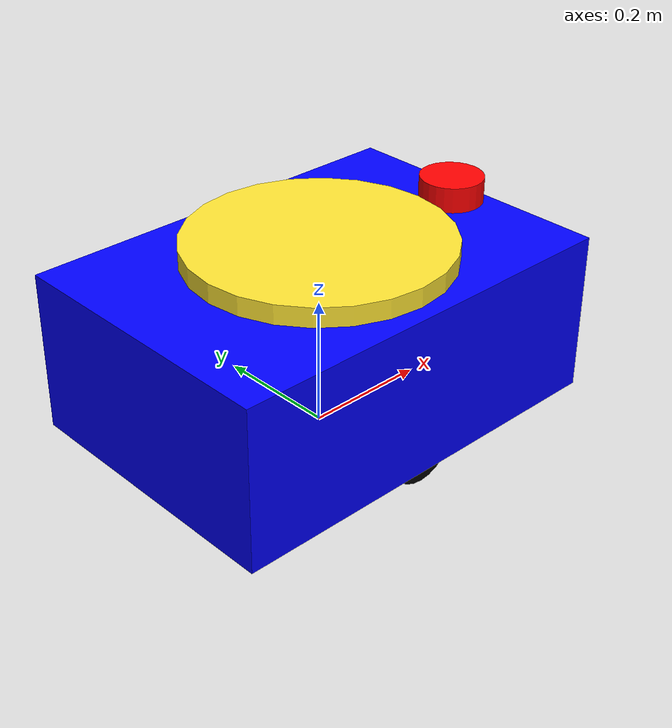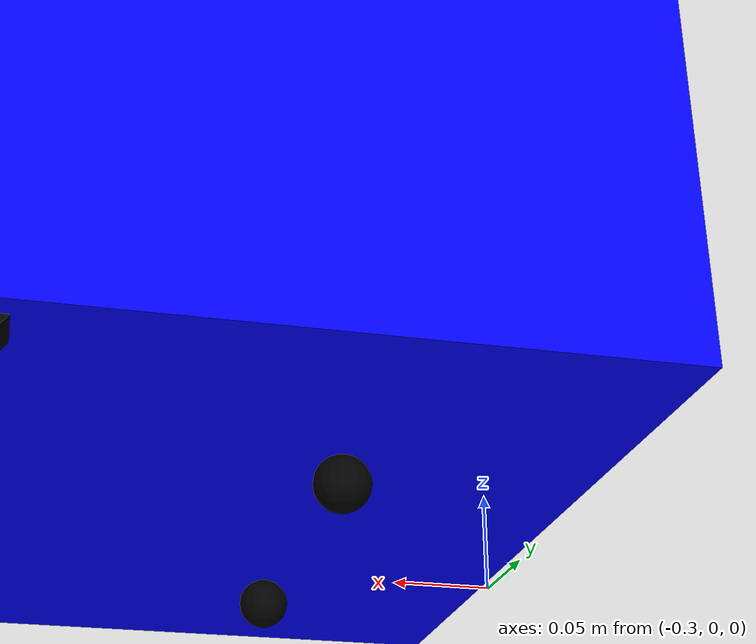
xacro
<?xml version="1.0"?>
<robot name="amr" xmlns:xacro="http://www.ros.org/wiki/xacro">

    <xacro:include filename="robot_common1.xacro" />
    <xacro:include filename="lidar.xacro" />
    <xacro:include filename="lifting.xacro" />
    <xacro:include filename="gazebo.xacro" />

</robot>

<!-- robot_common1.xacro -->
<robot xmlns:xacro="http://www.ros.org/wiki/xacro">

    <xacro:include filename="inertial.xacro" />

    <!-- MATERIAL COLOR-->

    <material name= "blue">
        <color rgba= "0 0 1 1" />
    </material>
    <material name= "green">
        <color rgba= "0 1 0 1" />
    </material>
    <material name= "red">
        <color rgba= "1 0 0 1" />
    </material>
    <material name= "black">
        <color rgba= "0 0 0 1" />
    </material>
    <material name= "white">
        <color rgba= "1 1 1 1" />
    </material>
    <material name= "yellow">
        <color rgba= "1 0.9 0.2 1" />
    </material>

    <!-- common val-->

    <xacro:property name="b_l" value="0.65"/>
    <xacro:property name="b_w" value="0.45"/>
    <xacro:property name="b_h" value="0.25"/>
    <xacro:property name="w_r" value="0.06"/>
    <xacro:property name="w_l" value="0.025"/>
    <xacro:property name="c_r" value="0.0135"/>
    <xacro:property name="c_d" value="0.027"/>

    <!-- BASE LINK -->

    <link name="base_link">

    </link>

    <!-- base_footprint -->

    <link name="base_footprint">
    </link>

    <!-- BASE_FOOTPRINT LINK -->

    <joint name="base_footprint_joint" type="fixed">
        <parent link="base_link"/>
        <child link="base_footprint"/>
        <origin xyz="0 0 0" rpy="0 0 0"/>
    </joint>

    <!-- chassis link -->

    <link name="chassis_link">
        <visual>
            <geometry>
                <box size="${b_l} ${b_w} ${b_h}" />
            </geometry>
            <origin xyz="0 0 ${b_h/2}" rpy="0 0 0" />
            <material name="blue" />
        </visual>
        <collision>
            <geometry>
                <box size="${b_l} ${b_w} ${b_h}"/>
            </geometry>
            <origin xyz="0 0 ${b_h/2}" rpy="0 0 0" />
        </collision>
        <xacro:box_inertia m="5" l="${b_l}" w="${b_w}" h="${b_h}"
            xyz="0 0 ${b_h/2}" rpy="0 0 0" />
    </link>

    <!-- chassis joint -->

    <joint name = "chassis_joint " type = "fixed">
        <parent link ="base_link" />
        <child link ="chassis_link"   />
        <origin xyz="0 0 ${c_d}" rpy="0 0 0" />
    </joint>

    <!-- wheel link -->

    <xacro:macro name="wheel_link" params="pre" >
        <link name="${pre}_wheel_link">
            <visual>
                <geometry>
                    <cylinder radius="${w_r}" length="${w_l}" />
                </geometry>
                <origin xyz="0 0 0" rpy="1.57 0 0" />
                <material name="black" />
            </visual>
            <collision>
                <geometry>
                    <cylinder radius="${w_r}" length="${w_l}" />
                </geometry>
                <origin xyz="0 0 0" rpy="1.57 0 0" />
            </collision>
            <xacro:cylinder_inertia m="0.1" r="${w_r}" h="${w_l}"
                xyz="0 0 0" rpy="1.57 0 0" />
        </link>
    </xacro:macro>

    <xacro:wheel_link pre="l" />
    <xacro:wheel_link pre="r" />

    <!-- wheel joint -->

    <joint name = "r_wheel_joint" type = "continuous">
        <parent link ="base_link" />
        <child link ="r_wheel_link"   />
        <origin xyz="0 ${(b_w/2) - w_l} ${w_r}" rpy="0 0 0" />
        <axis xyz ="0 1 0 "  />
    </joint>

    <joint name = "l_wheel_joint" type = "continuous">
        <parent link ="base_link" />
        <child link ="l_wheel_link"   />
        <origin xyz="0 ${(-b_w/2) + w_l} ${w_r}" rpy="0 0 0" />
        <axis xyz ="0 1 0 "  />
    </joint>

    <!-- caster link -->

    <xacro:macro name="caster" params="pre">
        <link name="caster_wheel_link_${pre}">
            <visual>
                <geometry>
                    <sphere radius="${c_r}" />
                </geometry>
                <origin xyz="0 0 0" rpy="0 0 0" />
                <material name="black" />
            </visual>
            <collision>
                <geometry>
                    <sphere radius="${c_r}" />
                </geometry>
                <origin xyz="0 0 0" rpy="0 0 0" />
            </collision>
            <xacro:caster_inertia m="0.05" r="${c_r}"
                xyz="0 0 0" rpy="0 0 0" />
        </link>
    </xacro:macro>

    <xacro:caster pre="1" />
    <xacro:caster pre="2" />
    <xacro:caster pre="3" />
    <xacro:caster pre="4" />

    <!-- caster joint -->

    <joint name = "caster_wheel_joint_1" type = "fixed">
        <parent link ="chassis_link" />
        <child link ="caster_wheel_link_1"   />
        <origin xyz="0.2 0.1 -0.0135" rpy="0 0 0" />
    </joint>

    <joint name = "caster_wheel_joint_2" type = "fixed">
        <parent link ="chassis_link" />
        <child link ="caster_wheel_link_2"   />
        <origin xyz="-0.2 0.1 -0.0135" rpy="0 0 0" />
    </joint>

    <joint name = "caster_wheel_joint_3" type = "fixed">
        <parent link ="chassis_link" />
        <child link ="caster_wheel_link_3"   />
        <origin xyz="0.2 -0.1 -0.0135" rpy="0 0 0" />
    </joint>

    <joint name = "caster_wheel_joint_4" type = "fixed">
        <parent link ="chassis_link" />
        <child link ="caster_wheel_link_4"   />
        <origin xyz="-0.2 -0.1 -0.0135" rpy="0 0 0" />
    </joint>

</robot>

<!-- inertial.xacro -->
<robot xmlns:xacro="http://www.ros.org/wiki/xacro">

    <xacro:macro name="box_inertia" params="m l w h xyz rpy " >
        <inertial>
            <origin xyz ="${xyz}" rpy="${rpy}" />
            <mass value="${m}" />
            <inertia ixx="${(m/12) * (h*h + l*l)}" ixy="0" ixz="0"
                iyy="${(m/12) * (w*w + l*l)}" iyz="0"
                izz="${(m/12) * (w*w + h*h)}" >
            </inertia>
        </inertial>
    </xacro:macro>

    <xacro:macro name="cylinder_inertia" params="m r h xyz rpy " >
        <inertial>
            <origin xyz ="${xyz}" rpy="${rpy}" />
            <mass value="${m}" />
            <inertia ixx="${(m/12) * (3 * r*r + h*h)}" ixy="0" ixz="0"
                iyy="${(m/12) * (3 * r*r + h*h)}" iyz="0"
                izz="${(m/12) * r*r }" >
            </inertia>
        </inertial>
    </xacro:macro>

    <xacro:macro name="caster_inertia" params="m r xyz rpy " >
        <inertial>
            <origin xyz ="${xyz}" rpy="${rpy}" />
            <mass value="${m}" />
            <inertia ixx="${(2/5) * m*r*r}" ixy="0" ixz="0"
                iyy="${(2/5) * m*r*r}" iyz="0"
                izz="${(2/5) * m*r*r }" >
            </inertia>
        </inertial>
    </xacro:macro>

</robot>

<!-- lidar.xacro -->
<robot xmlns:xacro="http://www.ros.org/wiki/xacro">

    <xacro:include filename="inertial.xacro" />

    <link name="lidar_link">
        <visual>
            <geometry>
                <cylinder radius="0.05" length="0.04" />
            </geometry>
            <origin xyz="0 0 0" rpy="0 0 0" />
            <material name="red" />
        </visual>
        <collision>
            <geometry>
                <cylinder radius="0.05" length="0.04" />
            </geometry>
            <origin xyz="0 0 0" rpy="0 0 0" />
        </collision>
        <xacro:cylinder_inertia m="0.05" r="0.05" h="0.04"
                xyz="0 0 0" rpy="0 0 0" />
    </link>

    <joint name = "lidar_joint" type = "fixed">
        <parent link ="chassis_link" />
        <child link ="lidar_link"   />
        <origin xyz="0.275 0 0.27" rpy="0 0 0" />
    </joint>

    <gazebo reference="lidar_link">
        <material>Gazebo/Red</material>

        <sensor name="laser" type="ray">
            <pose> 0 0 0 0 0 0 </pose>
            <visualize>true</visualize>
            <update_rate>10</update_rate>
            <ray>
                <scan>
                    <horizontal>
                        <samples>360</samples>
                        <min_angle>-3.14</min_angle>
                        <max_angle>3.14</max_angle>
                    </horizontal>
                </scan>
                <range>
                    <min>0.3</min>
                    <max>12</max>
                </range>
            </ray>
            <plugin name="laser_controller" filename="libgazebo_ros_ray_sensor.so">
                <ros>
                    <argument>~/out:=scan</argument>
                </ros>
                <output_type>sensor_msgs/LaserScan</output_type>
                <frame_name>lidar_link</frame_name>
            </plugin>
        </sensor>
    </gazebo>

</robot>

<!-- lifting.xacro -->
<robot xmlns:xacro="http://www.ros.org/wiki/xacro">

    <xacro:include filename="inertial.xacro" />

    <link name="lifting_mech_link">
        <visual>
            <geometry>
                <cylinder radius="0.2" length="0.2" />
            </geometry>
            <origin xyz="0 0 0" rpy="0 0 0" />
            <material name="yellow" />
        </visual>
        <collision>
            <geometry>
                <cylinder radius="0.2" length="0.2" />
            </geometry>
            <origin xyz="0 0 0" rpy="0 0 0" />
        </collision>
        <xacro:cylinder_inertia m="1" r="0.2" h="0.2"
                xyz="0 0 0" rpy="0 0 0" />
    </link>

    <joint name = "lifting_mech_joint" type = "prismatic">
        <parent link ="chassis_link" />
        <child link ="lifting_mech_link"   />
        <limit effort="100" lower="0" upper="0.05" velocity="0.5"/>
        <origin xyz="0 0 0.18" rpy="0 0 0" />
        <axis xyz="0 0 1"/>
    </joint>

</robot>
